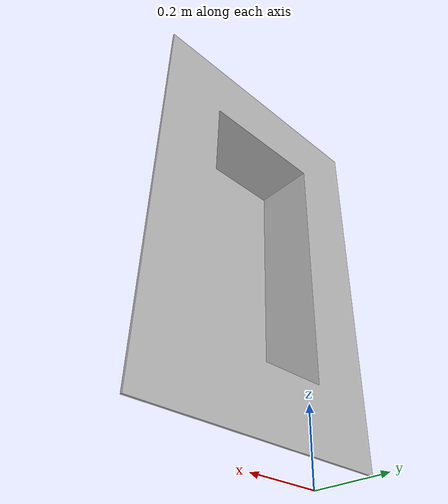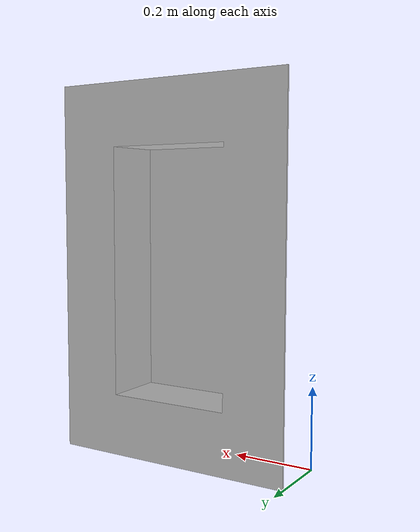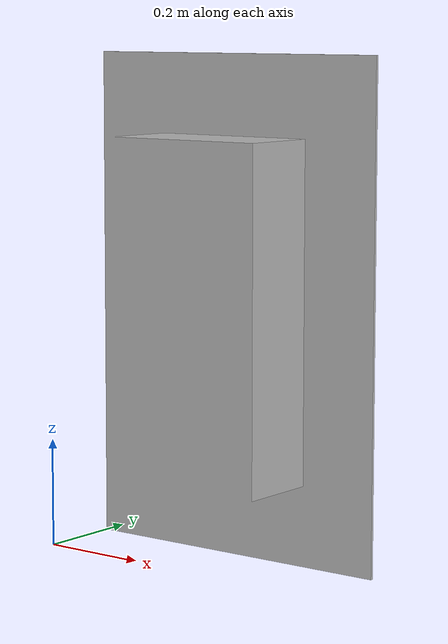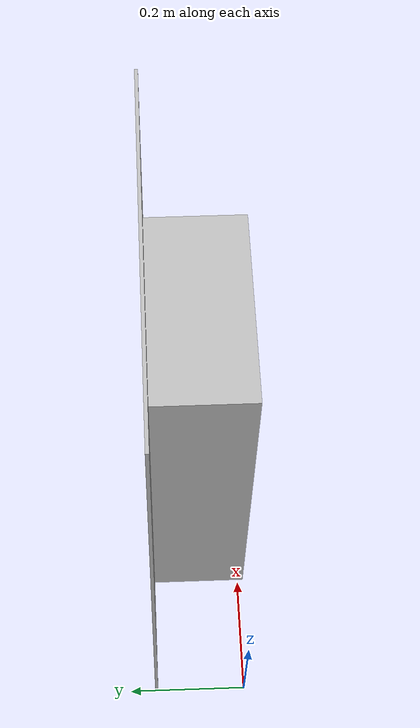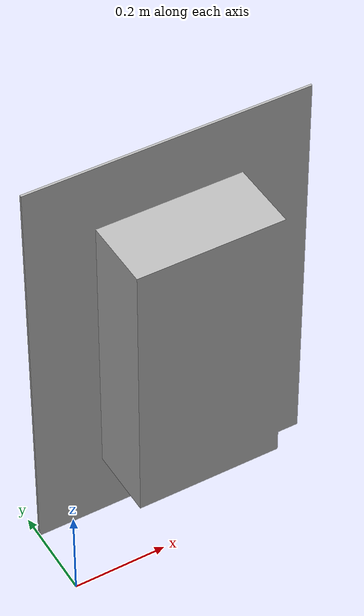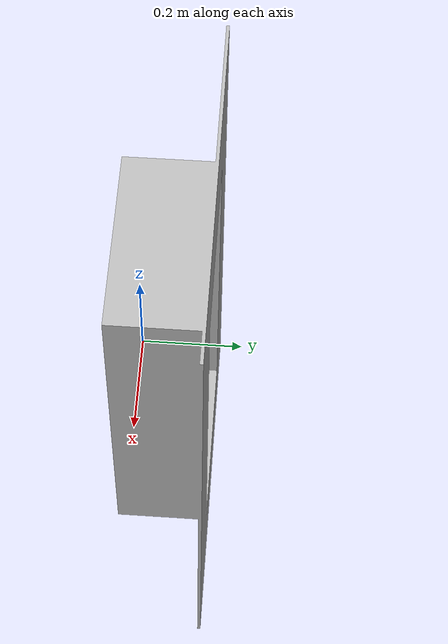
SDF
<?xml version="1.0" encoding="UTF-8"?>

<sdf version="1.10">
    <model name="Bin">
        <cast_shadows>false</cast_shadows>
        <link name="link">
            <cast_shadows>false</cast_shadows>
            <collision name="collision">
                <geometry>
                    <mesh>
                        <uri>meshes/Bin.obj</uri>
                        <scale>1 1 1</scale>
                    </mesh>
                </geometry>
            </collision>

            <visual name="visual">
                <geometry>
                    <mesh>
                        <uri>meshes/Bin.obj</uri>
                        <scale>1 1 1</scale>
                    </mesh>
                </geometry>
                <cast_shadows>false</cast_shadows>
            </visual>
        </link>

        <plugin filename="gz-sim-label-system" name="gz::sim::systems::Label">
            <label>7</label>
        </plugin>
        <static>true</static>
    </model>
</sdf>
